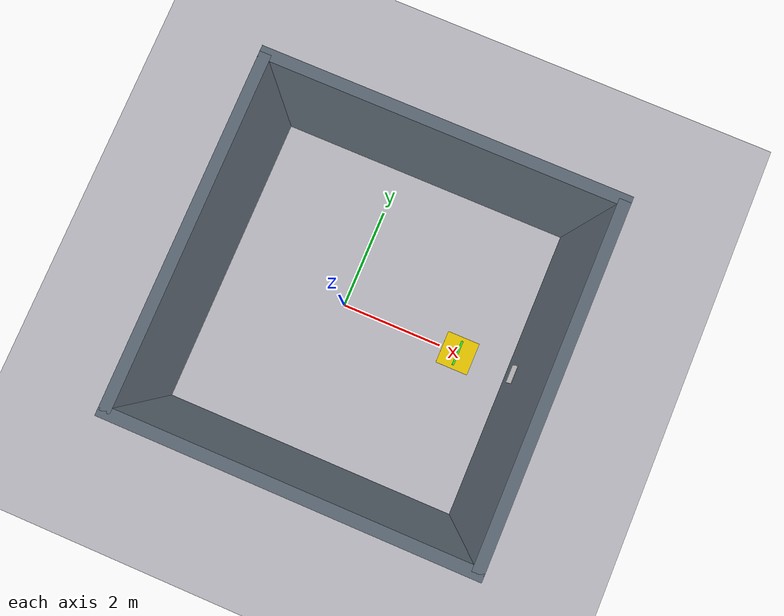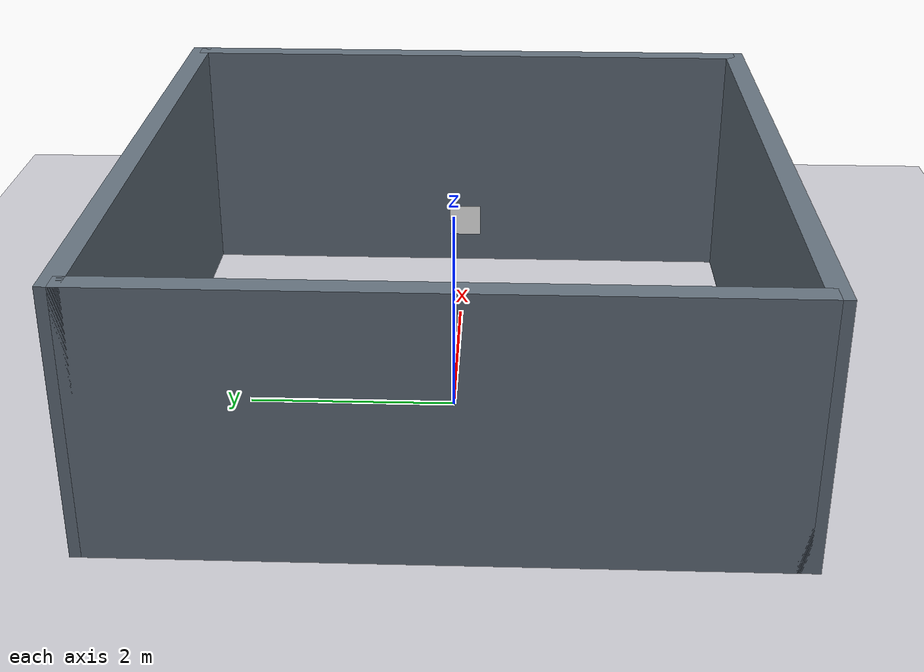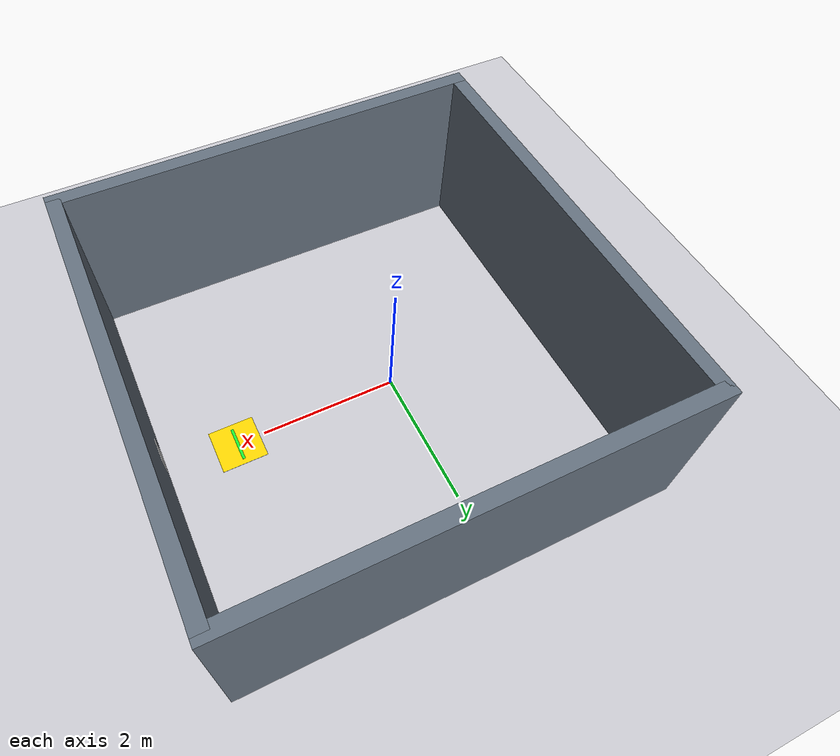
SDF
<?xml version="1.0" ?>
<sdf version="1.6">
  <world name="load_bay_world">

    <!-- Physics Engine -->
    <physics name="1ms" type="ignored">
      <max_step_size>0.001</max_step_size>
      <real_time_factor>1.0</real_time_factor>
    </physics>

    <!-- Plugins -->
    <plugin filename="gz-sim-physics-system" name="gz::sim::systems::Physics"/>
    <plugin filename="gz-sim-user-commands-system" name="gz::sim::systems::UserCommands"/>
    <plugin filename="gz-sim-scene-broadcaster-system" name="gz::sim::systems::SceneBroadcaster"/>
    <plugin filename="gz-sim-sensors-system" name="gz::sim::systems::Sensors"/>

    <!-- Ambient Lighting & Sun -->
    <light type="directional" name="sun">
      <cast_shadows>true</cast_shadows>
      <pose>0 0 10 0 0 0</pose>
      <diffuse>0.85 0.85 0.85 1</diffuse>
      <specular>0.2 0.2 0.2 1</specular>
      <attenuation>
        <range>1000</range>
        <constant>0.9</constant>
        <linear>0.01</linear>
        <quadratic>0.001</quadratic>
      </attenuation>
      <direction>-0.5 0.1 -0.9</direction>
    </light>

    <!-- Ground Plane -->
    <model name="ground_plane">
      <static>true</static>
      <link name="link">
        <collision name="collision">
          <geometry>
            <plane>
              <normal>0 0 1</normal>
              <size>100 100</size>
            </plane>
          </geometry>
        </collision>
        <visual name="visual">
          <geometry>
            <plane>
              <normal>0 0 1</normal>
              <size>100 100</size>
            </plane>
          </geometry>
          <material>
            <ambient>0.75 0.75 0.78 1</ambient>
            <diffuse>0.8 0.8 0.83 1</diffuse>
            <specular>0.5 0.5 0.5 1</specular>
          </material>
        </visual>
      </link>
    </model>

    <!-- ================= WALL 1: EAST / LOAD BAY TARGET WALL ================= -->
    <model name="wall_east_load_bay">
      <static>true</static>
      <pose>3.5 0 1.25 0 0 0</pose>
      <link name="link">
        <collision name="collision">
          <geometry>
            <box>
              <size>0.2 6.0 2.5</size>
            </box>
          </geometry>
        </collision>
        <visual name="visual">
          <geometry>
            <box>
              <size>0.2 6.0 2.5</size>
            </box>
          </geometry>
          <material>
            <ambient>0.3 0.35 0.4 1</ambient>
            <diffuse>0.4 0.45 0.5 1</diffuse>
          </material>
        </visual>
      </link>
    </model>

    <!-- ================= WALL 2: WEST / REAR WALL ================= -->
    <model name="wall_west">
      <static>true</static>
      <pose>-2.5 0 1.25 0 0 0</pose>
      <link name="link">
        <collision name="collision">
          <geometry>
            <box>
              <size>0.2 6.0 2.5</size>
            </box>
          </geometry>
        </collision>
        <visual name="visual">
          <geometry>
            <box>
              <size>0.2 6.0 2.5</size>
            </box>
          </geometry>
          <material>
            <ambient>0.3 0.35 0.4 1</ambient>
            <diffuse>0.4 0.45 0.5 1</diffuse>
          </material>
        </visual>
      </link>
    </model>

    <!-- ================= WALL 3: NORTH / SIDE WALL ================= -->
    <model name="wall_north">
      <static>true</static>
      <pose>0.5 3.0 1.25 0 0 0</pose>
      <link name="link">
        <collision name="collision">
          <geometry>
            <box>
              <size>6.2 0.2 2.5</size>
            </box>
          </geometry>
        </collision>
        <visual name="visual">
          <geometry>
            <box>
              <size>6.2 0.2 2.5</size>
            </box>
          </geometry>
          <material>
            <ambient>0.3 0.35 0.4 1</ambient>
            <diffuse>0.4 0.45 0.5 1</diffuse>
          </material>
        </visual>
      </link>
    </model>

    <!-- ================= WALL 4: SOUTH / SIDE WALL ================= -->
    <model name="wall_south">
      <static>true</static>
      <pose>0.5 -3.0 1.25 0 0 0</pose>
      <link name="link">
        <collision name="collision">
          <geometry>
            <box>
              <size>6.2 0.2 2.5</size>
            </box>
          </geometry>
        </collision>
        <visual name="visual">
          <geometry>
            <box>
              <size>6.2 0.2 2.5</size>
            </box>
          </geometry>
          <material>
            <ambient>0.3 0.35 0.4 1</ambient>
            <diffuse>0.4 0.45 0.5 1</diffuse>
          </material>
        </visual>
      </link>
    </model>

    <!-- ================= DOCKING BAY FLOOR MARKING PAD ================= -->
    <!-- Yellow floor boundary box where robot achieves pose verification -->
    <model name="docking_floor_pad">
      <static>true</static>
      <pose>2.39 0.0 0.002 0 0 0</pose>
      <link name="link">
        <visual name="visual_outer_pad">
          <geometry>
            <box>
              <size>0.65 0.65 0.004</size>
            </box>
          </geometry>
          <material>
            <ambient>0.9 0.75 0.1 1</ambient>
            <diffuse>1.0 0.85 0.0 1</diffuse>
          </material>
        </visual>
        <visual name="visual_inner_target_line">
          <pose>0 0 0.003 0 0 0</pose>
          <geometry>
            <box>
              <size>0.04 0.50 0.004</size>
            </box>
          </geometry>
          <material>
            <ambient>0.1 0.8 0.2 1</ambient>
            <diffuse>0.1 1.0 0.2 1</diffuse>
          </material>
        </visual>
      </link>
    </model>

    <!-- ArUco Marker Model attached on Load Bay Wall facing -X direction -->
    <include>
      <uri>model://load_bay_marker</uri>
      <name>load_bay_marker</name>
      <pose>3.39 0 0.5 0 0 3.14159265</pose>
    </include>

  </world>
</sdf>

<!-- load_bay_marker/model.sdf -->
<sdf version="1.6">
  <model name="load_bay_marker">
    <static>true</static>
    <link name="link">
      <visual name="visual">
        <geometry>
          <box>
            <size>0.01 0.35 0.35</size>
          </box>
        </geometry>
        <material>
          <diffuse>1 1 1 1</diffuse>
          <specular>0.2 0.2 0.2 1</specular>
          <pbr>
            <metal>
              <albedo_map>model://load_bay_marker/materials/textures/marker_0.png</albedo_map>
            </metal>
          </pbr>
          <script>
            <uri>model://load_bay_marker/materials/scripts</uri>
            <uri>model://load_bay_marker/materials/textures</uri>
            <name>LoadBayMarker/Marker0</name>
          </script>
        </material>
      </visual>
      <collision name="collision">
        <geometry>
          <box>
            <size>0.01 0.35 0.35</size>
          </box>
        </geometry>
      </collision>
    </link>
  </model>
</sdf>
